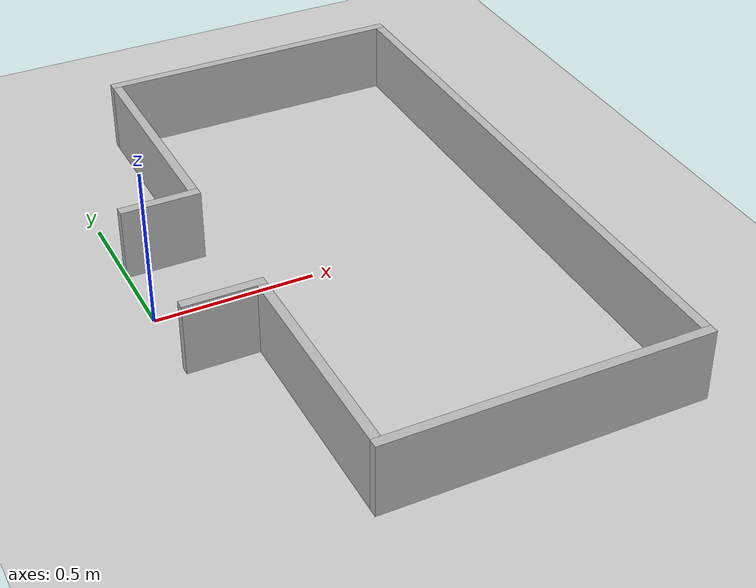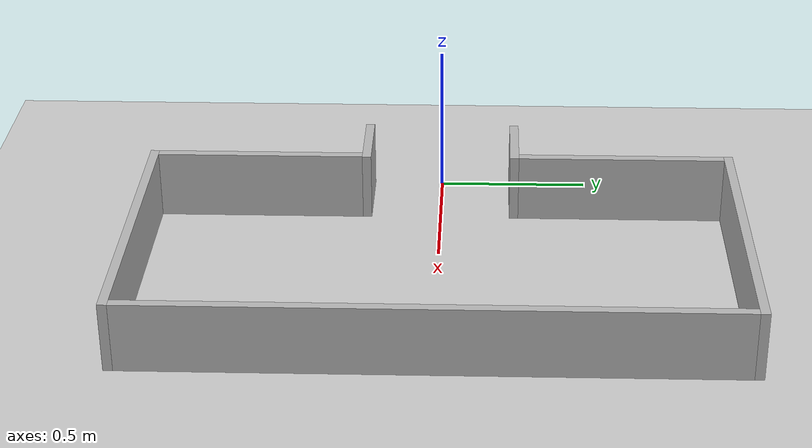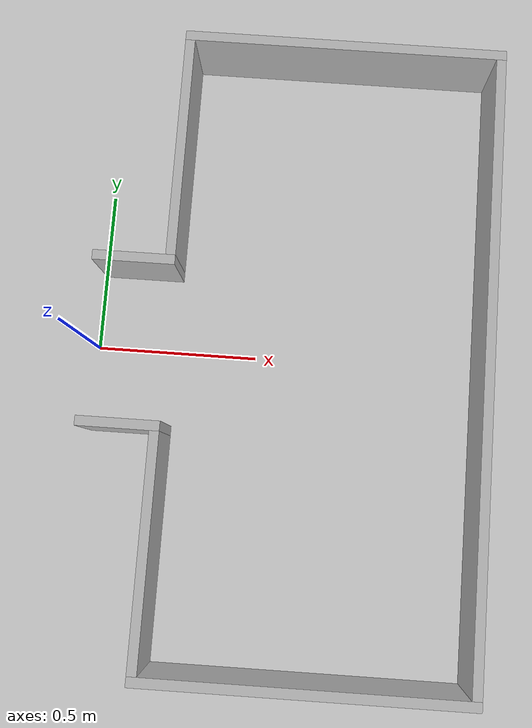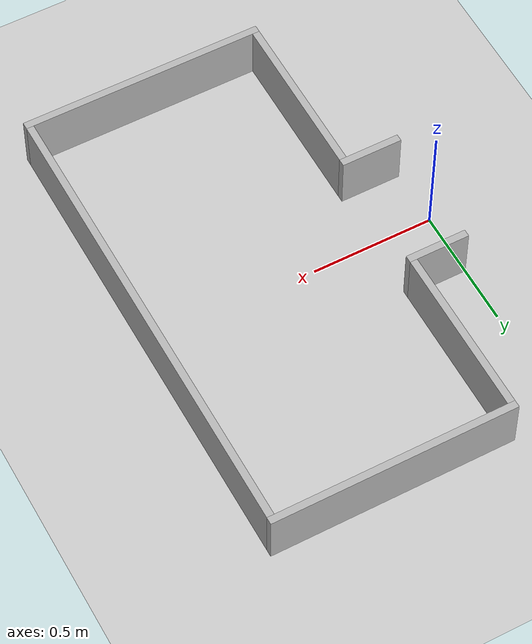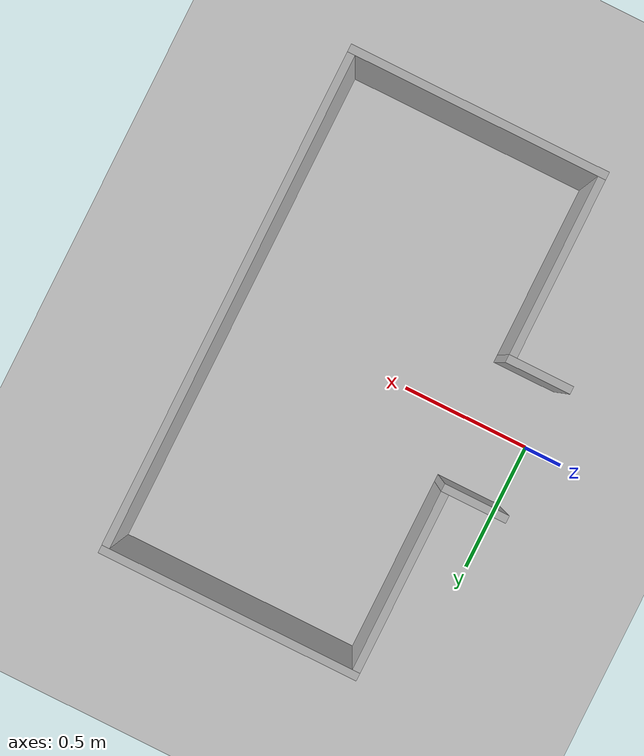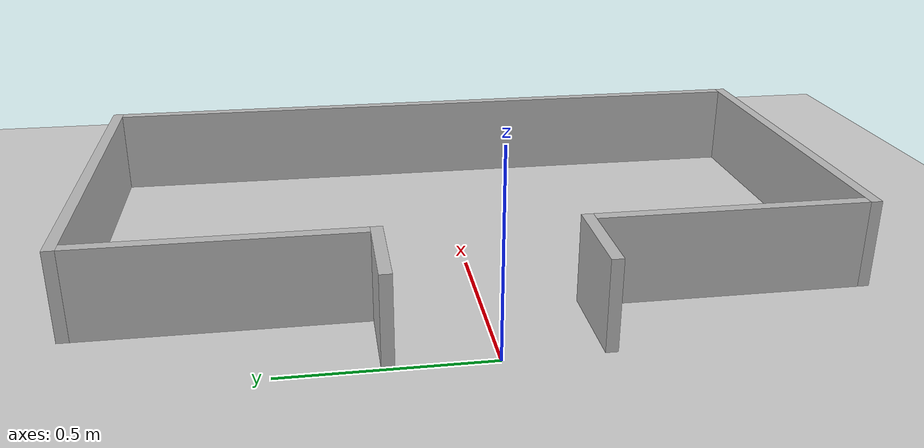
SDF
<?xml version="1.0"?>
<sdf version="1.6">
  <world name="default">
  <plugin
    filename="gz-sim-physics-system"
    name="gz::sim::systems::Physics">
  </plugin>
  <plugin
    filename="gz-sim-user-commands-system"
    name="gz::sim::systems::UserCommands">
  </plugin>
  <plugin
    filename="gz-sim-scene-broadcaster-system"
    name="gz::sim::systems::SceneBroadcaster">
  </plugin>
  <plugin
    filename="gz-sim-sensors-system"
    name="gz::sim::systems::Sensors">
    <render_engine>ogre2</render_engine>
  </plugin>
  <plugin
    filename="gz-sim-imu-system"
    name="gz::sim::systems::Imu">
  </plugin>
    <include>
      <uri>https://fuel.gazebosim.org/1.0/OpenRobotics/models/Ground Plane</uri>
    </include>

    <include>
      <uri>https://fuel.gazebosim.org/1.0/OpenRobotics/models/Sun</uri>
    </include>

    <scene>
      <shadows>false</shadows>
    </scene>

    <gui fullscreen='0'>
      <camera name='user_camera'>
        <pose frame=''>0.319654 -0.235002 9.29441 0 1.5138 0.009599</pose>
        <view_controller>orbit</view_controller>
        <projection_type>perspective</projection_type>
      </camera>
    </gui>

    <physics type="ode">
      <real_time_update_rate>1000.0</real_time_update_rate>
      <max_step_size>0.001</max_step_size>
      <real_time_factor>1</real_time_factor>
      <ode>
        <solver>
          <type>quick</type>
          <iters>150</iters>
          <precon_iters>0</precon_iters>
          <sor>1.400000</sor>
          <use_dynamic_moi_rescaling>1</use_dynamic_moi_rescaling>
        </solver>
        <constraints>
          <cfm>0.00001</cfm>
          <erp>0.2</erp>
          <contact_max_correcting_vel>2000.000000</contact_max_correcting_vel>
          <contact_surface_layer>0.01000</contact_surface_layer>
        </constraints>
      </ode>
    </physics>

    <!-- 당신이 만든 모델 -->
    <include>
      <uri>model://robot_world</uri>
    </include>

  </world>
</sdf>

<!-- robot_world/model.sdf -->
<sdf version="1.5">
  <model name="box1">
    <static>true</static>

    <!-- 첫 번째 박스 -->
    <link name="link1">
      <pose>0.125 0.25 0.115 0.0 0.0 0.0</pose>
      <visual name="visual1">
        <geometry>
          <box>
            <size>0.25 0.03 0.23</size>
          </box>
        </geometry>
      </visual>
      <collision name="collision1">
        <geometry>
          <box>
            <size>0.25 0.03 0.23</size>
          </box>
        </geometry>
      </collision>
    </link>

    <link name="link2">
      <pose>0.235 0.61 0.115 0.0 0.0 0.0</pose>
      <visual name="visual2">
        <geometry>
          <box>
            <size>0.03 0.69 0.23</size>
          </box>
        </geometry>
      </visual>
      <collision name="collision2">
        <geometry>
          <box>
            <size>0.03 0.744 0.23</size>
          </box>
        </geometry>
      </collision>
    </link>

    <link name="link3">
      <pose>0.72 0.970 0.115 0.0 0.0 0.0</pose>
      <visual name="visual3">
        <geometry>
          <box>
            <size>1 0.03 0.23</size>
          </box>
        </geometry>
      </visual>
      <collision name="collision3">
        <geometry>
          <box>
            <size>1 0.03 0.23</size>
          </box>
        </geometry>
      </collision>
    </link>

    <link name="link4">
      <pose>1.205 0.0 0.115 0.0 0.0 0.0</pose>
      <visual name="visual4">
        <geometry>
          <box>
            <size>0.03 1.91 0.23</size>
          </box>
        </geometry>
      </visual>
      <collision name="collision4">
        <geometry>
          <box>
            <size>0.03 1.94 0.23</size>
          </box>
        </geometry>
      </collision>
    </link>

    <link name="link5">
      <pose>0.72 -0.970 0.115 0.0 0.0 0.0</pose>
      <visual name="visual3">
        <geometry>
          <box>
            <size>1 0.03 0.23</size>
          </box>
        </geometry>
      </visual>
      <collision name="collision3">
        <geometry>
          <box>
            <size>1 0.03 0.23</size>
          </box>
        </geometry>
      </collision>
    </link>

    <link name="link6">
      <pose>0.235 -0.61 0.115 0.0 0.0 0.0</pose>
      <visual name="visual2">
        <geometry>
          <box>
            <size>0.03 0.69 0.23</size>
          </box>
        </geometry>
      </visual>
      <collision name="collision2">
        <geometry>
          <box>
            <size>0.03 0.744 0.23</size>
          </box>
        </geometry>
      </collision>
    </link>

    <link name="link7">
      <pose>0.125 -0.25 0.115 0.0 0.0 0.0</pose>
      <visual name="visual7">
        <geometry>
          <box>
            <size>0.25 0.03 0.23</size>
          </box>
        </geometry>
      </visual>
      <collision name="collision7">
        <geometry>
          <box>
            <size>0.25 0.03 0.23</size>
          </box>
        </geometry>
      </collision>
    </link>

  </model>
</sdf>
